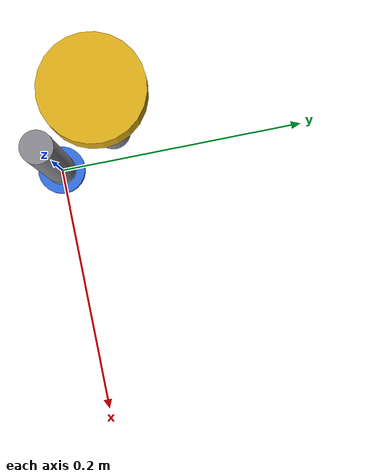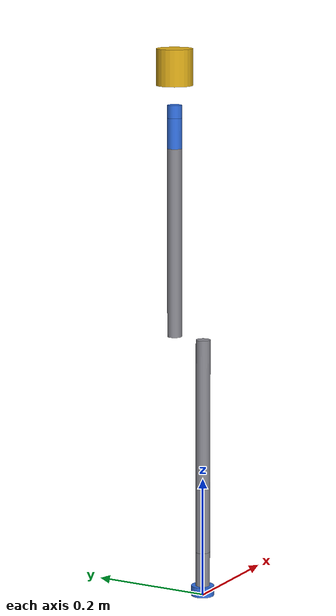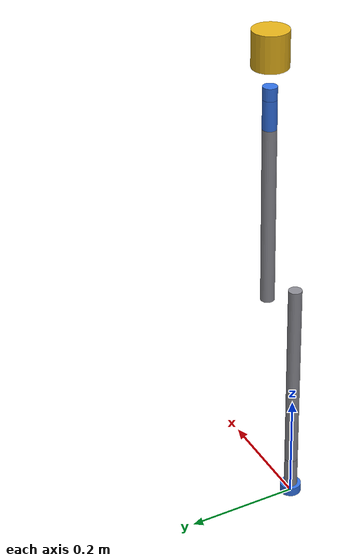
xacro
<?xml version="1.0"?>
<robot name="gimbalarm" xmlns:xacro="http://ros.org/wiki/xacro">

  <!-- link lengths [m]  (from DH measurement 2026-06-15, standard DH) -->
  <!-- DH a[mm]: 17, 58, 368, 368, 103 ; alpha[deg]: 0, -90, 0, 90, -90 ; d2=54 -->
  <xacro:property name="L0"  value="0.017"/>  <!-- base_link top -> base_yaw axis  (DH a0, arbitrary base) -->
  <xacro:property name="Ly"  value="0.058"/>  <!-- base_yaw -> shoulder axis        (DH a1) -->
  <xacro:property name="L1"  value="0.362"/>  <!-- shoulder -> elbow  (upper arm)   (0.409 - 47mm cut) -->
  <xacro:property name="L2"  value="0.313"/>  <!-- elbow -> wrist     (forearm)     (0.335 - 22mm cut) -->
  <xacro:property name="L3"  value="0.05"/>   <!-- wrist_pitch -> wrist_roll        (split of DH a4) -->
  <xacro:property name="L4"  value="0.053"/>  <!-- wrist_roll -> cup center (tool)  (L3+L4 = DH a4 = 0.103) -->
  <xacro:property name="Loff" value="0.054"/> <!-- elbow lateral offset along shoulder axis (DH d2) -->
  <xacro:property name="rr"  value="0.012"/>  <!-- visual cylinder radius           -->

  <!-- shared joint dynamics limits -->
  <xacro:property name="vL" value="3.0"/>     <!-- velocity limit [rad/s] -->
  <xacro:property name="eL" value="18.0"/>    <!-- effort   limit [Nm]    -->

  <material name="grey"><color rgba="0.55 0.55 0.58 1"/></material>
  <material name="blu"><color rgba="0.20 0.45 0.90 1"/></material>
  <material name="cup"><color rgba="0.90 0.70 0.10 1"/></material>

  <!-- a cylinder of length 'seglen' grown along +Z from the link origin -->
  <xacro:macro name="seg" params="seglen mat">
    <visual>
      <origin xyz="0 0 ${seglen/2}" rpy="0 0 0"/>
      <geometry><cylinder radius="${rr}" length="${seglen}"/></geometry>
      <material name="${mat}"/>
    </visual>
  </xacro:macro>

  <link name="base_link">
    <visual>
      <origin xyz="0 0 ${L0/2}" rpy="0 0 0"/>
      <geometry><cylinder radius="${rr*1.6}" length="${L0}"/></geometry>
      <material name="blu"/>
    </visual>
  </link>

  <joint name="base_yaw" type="revolute">
    <parent link="base_link"/><child link="link_yaw"/>
    <origin xyz="0 0 ${L0}" rpy="0 0 0"/>
    <axis xyz="0 0 1"/>
    <limit lower="-1.5708" upper="1.5708" velocity="${vL}" effort="${eL}"/>
  </joint>
  <link name="link_yaw"><xacro:seg seglen="${Ly}" mat="grey"/></link>

  <joint name="shoulder" type="revolute">
    <parent link="link_yaw"/><child link="link_upper"/>
    <origin xyz="0 0 ${Ly}" rpy="0 0 0"/>
    <axis xyz="0 1 0"/>
    <limit lower="-1.5708" upper="1.5708" velocity="${vL}" effort="${eL}"/>
  </joint>
  <link name="link_upper"><xacro:seg seglen="${L1}" mat="grey"/></link>

  <joint name="elbow" type="revolute">
    <parent link="link_upper"/><child link="link_fore"/>
    <origin xyz="0 ${Loff} ${L1}" rpy="0 0 0"/>  <!-- Loff = DH d2 lateral offset -->

    <axis xyz="0 1 0"/>
    <limit lower="-2.0944" upper="2.0944" velocity="${vL}" effort="${eL}"/>
  </joint>
  <link name="link_fore"><xacro:seg seglen="${L2}" mat="grey"/></link>

  <joint name="wrist_pitch" type="revolute">
    <parent link="link_fore"/><child link="link_wp"/>
    <origin xyz="0 0 ${L2}" rpy="0 0 0"/>
    <axis xyz="0 1 0"/>
    <limit lower="-3.1416" upper="3.1416" velocity="${vL}" effort="${eL}"/>
  </joint>
  <link name="link_wp"><xacro:seg seglen="${L3}" mat="blu"/></link>

  <joint name="wrist_roll" type="revolute">
    <parent link="link_wp"/><child link="link_wr"/>
    <origin xyz="0 0 ${L3}" rpy="0 0 0"/>
    <axis xyz="0 0 1"/>
    <limit lower="-3.1416" upper="3.1416" velocity="${vL}" effort="${eL}"/>
  </joint>
  <link name="link_wr"><xacro:seg seglen="${L4*0.4}" mat="blu"/></link>

  <joint name="tool0" type="fixed">
    <parent link="link_wr"/><child link="cup"/>
    <origin xyz="0 0 ${L4}" rpy="0 0 0"/>
  </joint>
  <link name="cup">
    <visual>
      <origin xyz="0 0 0.03" rpy="0 0 0"/>
      <geometry><cylinder radius="0.03" length="0.06"/></geometry>
      <material name="cup"/>
    </visual>
  </link>

</robot>
